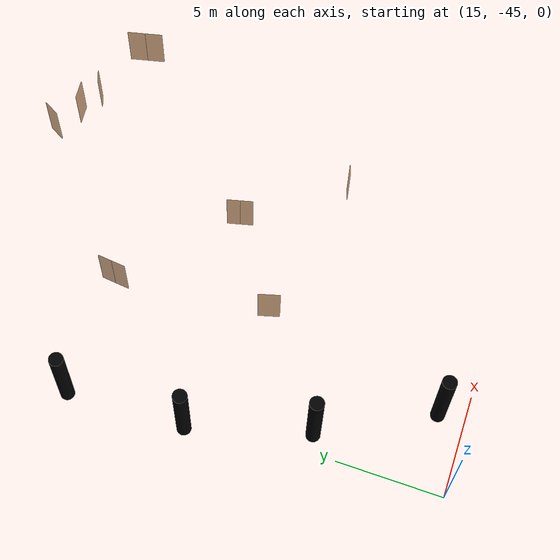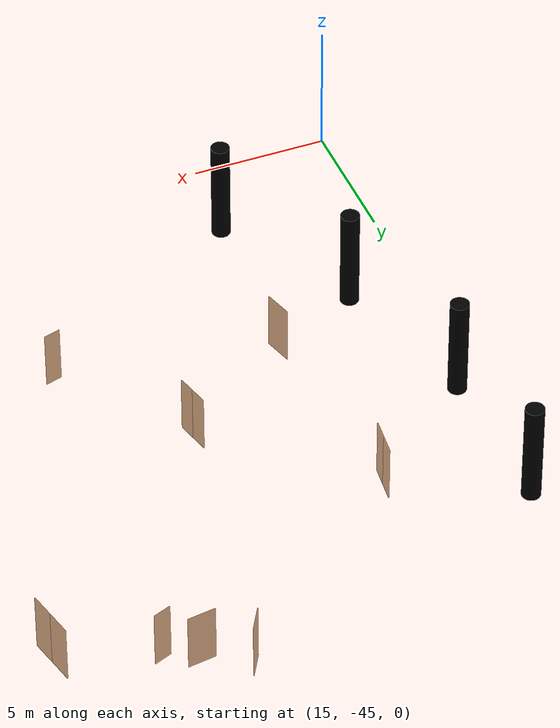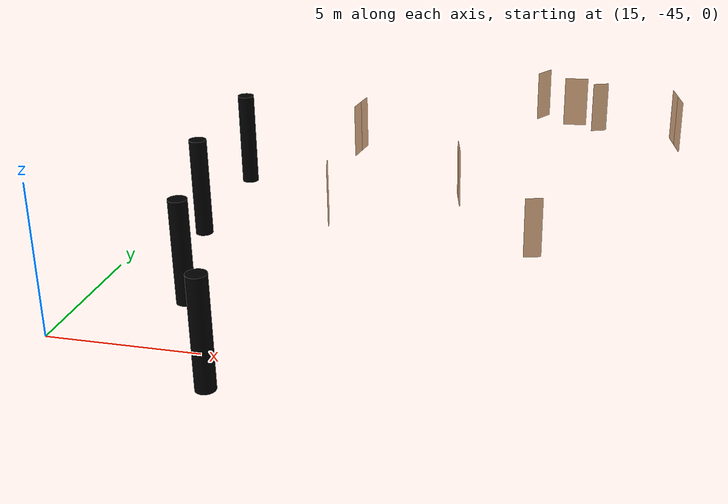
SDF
<sdf version="1.7">
 <world name="world">
  <model name="D35">
   <pose>27.2522 -20.905 0 -0 -0 -2.0991</pose>
   <link name="right">
    <pose>0 0 1.11 0 -0 0</pose>
    <visual name="right_visual">
     <geometry><box><size>0.926974 0.03 2.2</size></box></geometry>
     <material><ambient>0.5 0.25 0 0.6</ambient><diffuse>0.5 0.25 0 0.6</diffuse></material>
    </visual>
    <collision name="right_collision">
     <geometry><box><size>0.926974 0.03 2.2</size></box></geometry>
     <surface><contact><collide_bitmask>2</collide_bitmask></contact></surface>
    </collision>
    <inertial>
     <mass>50</mass>
     <inertia><ixx>20.1704</ixx><iyy>23.747</iyy><izz>3.58409</izz><ixy>0</ixy><ixz>0</ixz><iyz>0</iyz></inertia>
    </inertial>
   </link>
   <joint name="right_joint" type="revolute">
    <parent>world</parent>
    <child>right</child>
    <axis>
     <xyz>0 0 1</xyz>
     <limit><lower>0</lower><upper>1.57</upper></limit>
     <dynamics><spring_reference>0</spring_reference><spring_stiffness>0</spring_stiffness></dynamics>
    </axis>
    <pose>0.468487 0 0 0 -0 0</pose>
   </joint>
   <plugin name="door_D35" filename="libdoor.so">
    <v_max_door>0.5</v_max_door>
    <a_max_door>0.3</a_max_door>
    <a_nom_door>0.15</a_nom_door>
    <dx_min_door>0.01</dx_min_door>
    <f_max_door>500.0</f_max_door>
    <door name="D35" type="SwingDoor" left_joint_name="empty_joint" right_joint_name="right_joint"/>
   </plugin>
  </model>
  <model name="D37">
   <pose>28.8017 -21.7376 0 0 -0 0.134395</pose>
   <link name="right">
    <pose>0 0 1.11 0 -0 0</pose>
    <visual name="right_visual">
     <geometry><box><size>1.02647 0.03 2.2</size></box></geometry>
     <material><ambient>0.5 0.25 0 0.6</ambient><diffuse>0.5 0.25 0 0.6</diffuse></material>
    </visual>
    <collision name="right_collision">
     <geometry><box><size>1.02647 0.03 2.2</size></box></geometry>
     <surface><contact><collide_bitmask>2</collide_bitmask></contact></surface>
    </collision>
    <inertial>
     <mass>50</mass>
     <inertia><ixx>20.1704</ixx><iyy>24.5569</iyy><izz>4.39395</izz><ixy>0</ixy><ixz>0</ixz><iyz>0</iyz></inertia>
    </inertial>
   </link>
   <joint name="right_joint" type="revolute">
    <parent>world</parent>
    <child>right</child>
    <axis>
     <xyz>0 0 -1</xyz>
     <limit><lower>0</lower><upper>1.57</upper></limit>
     <dynamics><spring_reference>0</spring_reference><spring_stiffness>0</spring_stiffness></dynamics>
    </axis>
    <pose>0.518237 0 0 0 -0 0</pose>
   </joint>
   <plugin name="door_D37" filename="libdoor.so">
    <v_max_door>0.5</v_max_door>
    <a_max_door>0.3</a_max_door>
    <a_nom_door>0.15</a_nom_door>
    <dx_min_door>0.01</dx_min_door>
    <f_max_door>500.0</f_max_door>
    <door name="D37" type="SwingDoor" left_joint_name="empty_joint" right_joint_name="right_joint"/>
   </plugin>
  </model>
  <model name="D38">
   <pose>29.9445 -22.3332 0 0 0 -2.76978</pose>
   <link name="right">
    <pose>0 0 1.11 0 -0 0</pose>
    <visual name="right_visual">
     <geometry><box><size>0.684938 0.03 2.2</size></box></geometry>
     <material><ambient>0.5 0.25 0 0.6</ambient><diffuse>0.5 0.25 0 0.6</diffuse></material>
    </visual>
    <collision name="right_collision">
     <geometry><box><size>0.684938 0.03 2.2</size></box></geometry>
     <surface><contact><collide_bitmask>2</collide_bitmask></contact></surface>
    </collision>
    <inertial>
     <mass>50</mass>
     <inertia><ixx>20.1704</ixx><iyy>22.1214</iyy><izz>1.9585</izz><ixy>0</ixy><ixz>0</ixz><iyz>0</iyz></inertia>
    </inertial>
   </link>
   <joint name="right_joint" type="revolute">
    <parent>world</parent>
    <child>right</child>
    <axis>
     <xyz>0 0 1</xyz>
     <limit><lower>0</lower><upper>1.57</upper></limit>
     <dynamics><spring_reference>0</spring_reference><spring_stiffness>0</spring_stiffness></dynamics>
    </axis>
    <pose>0.347469 0 0 0 -0 0</pose>
   </joint>
   <plugin name="door_D38" filename="libdoor.so">
    <v_max_door>0.5</v_max_door>
    <a_max_door>0.3</a_max_door>
    <a_nom_door>0.15</a_nom_door>
    <dx_min_door>0.01</dx_min_door>
    <f_max_door>500.0</f_max_door>
    <door name="D38" type="SwingDoor" left_joint_name="empty_joint" right_joint_name="right_joint"/>
   </plugin>
  </model>
  <model name="D41">
   <pose>20.8549 -34.8204 0 0 0 -1.29248</pose>
   <link name="right">
    <pose>0 0 1.11 0 -0 0</pose>
    <visual name="right_visual">
     <geometry><box><size>1.06495 0.03 2.2</size></box></geometry>
     <material><ambient>0.5 0.25 0 0.6</ambient><diffuse>0.5 0.25 0 0.6</diffuse></material>
    </visual>
    <collision name="right_collision">
     <geometry><box><size>1.06495 0.03 2.2</size></box></geometry>
     <surface><contact><collide_bitmask>2</collide_bitmask></contact></surface>
    </collision>
    <inertial>
     <mass>50</mass>
     <inertia><ixx>20.1704</ixx><iyy>24.8922</iyy><izz>4.72928</izz><ixy>0</ixy><ixz>0</ixz><iyz>0</iyz></inertia>
    </inertial>
   </link>
   <joint name="right_joint" type="revolute">
    <parent>world</parent>
    <child>right</child>
    <axis>
     <xyz>0 0 -1</xyz>
     <limit><lower>0</lower><upper>1.57</upper></limit>
     <dynamics><spring_reference>0</spring_reference><spring_stiffness>0</spring_stiffness></dynamics>
    </axis>
    <pose>0.537477 0 0 0 -0 0</pose>
   </joint>
   <plugin name="door_D41" filename="libdoor.so">
    <v_max_door>0.5</v_max_door>
    <a_max_door>0.3</a_max_door>
    <a_nom_door>0.15</a_nom_door>
    <dx_min_door>0.01</dx_min_door>
    <f_max_door>500.0</f_max_door>
    <door name="D41" type="SwingDoor" left_joint_name="empty_joint" right_joint_name="right_joint"/>
   </plugin>
  </model>
  <model name="D42">
   <pose>28.6688 -36.3474 0 0 -0 -2.85205</pose>
   <link name="right">
    <pose>0 0 1.11 0 -0 0</pose>
    <visual name="right_visual">
     <geometry><box><size>0.625709 0.03 2.2</size></box></geometry>
     <material><ambient>0.5 0.25 0 0.6</ambient><diffuse>0.5 0.25 0 0.6</diffuse></material>
    </visual>
    <collision name="right_collision">
     <geometry><box><size>0.625709 0.03 2.2</size></box></geometry>
     <surface><contact><collide_bitmask>2</collide_bitmask></contact></surface>
    </collision>
    <inertial>
     <mass>50</mass>
     <inertia><ixx>20.1704</ixx><iyy>21.798</iyy><izz>1.63505</izz><ixy>0</ixy><ixz>0</ixz><iyz>0</iyz></inertia>
    </inertial>
   </link>
   <joint name="right_joint" type="revolute">
    <parent>world</parent>
    <child>right</child>
    <axis>
     <xyz>0 0 1</xyz>
     <limit><lower>0</lower><upper>1.57</upper></limit>
     <dynamics><spring_reference>0</spring_reference><spring_stiffness>0</spring_stiffness></dynamics>
    </axis>
    <pose>0.317855 0 0 0 -0 0</pose>
   </joint>
   <plugin name="door_D42" filename="libdoor.so">
    <v_max_door>0.5</v_max_door>
    <a_max_door>0.3</a_max_door>
    <a_nom_door>0.15</a_nom_door>
    <dx_min_door>0.01</dx_min_door>
    <f_max_door>500.0</f_max_door>
    <door name="D42" type="SwingDoor" left_joint_name="empty_joint" right_joint_name="right_joint"/>
   </plugin>
  </model>
  <model name="DH4">
   <pose>33.3402 -23.5658 0 0 -0 1.79804</pose>
   <link name="right">
    <pose>0.460935 0 1.11 0 -0 0</pose>
    <visual name="right_visual">
     <geometry><box><size>0.911871 0.03 2.2</size></box></geometry>
     <material><ambient>0.5 0.25 0 0.6</ambient><diffuse>0.5 0.25 0 0.6</diffuse></material>
    </visual>
    <collision name="right_collision">
     <geometry><box><size>0.911871 0.03 2.2</size></box></geometry>
     <surface><contact><collide_bitmask>2</collide_bitmask></contact></surface>
    </collision>
    <inertial>
     <mass>50</mass>
     <inertia><ixx>20.1704</ixx><iyy>23.6313</iyy><izz>3.46837</izz><ixy>0</ixy><ixz>0</ixz><iyz>0</iyz></inertia>
    </inertial>
   </link>
   <joint name="right_joint" type="revolute">
    <parent>world</parent>
    <child>right</child>
    <axis>
     <xyz>0 0 -1</xyz>
     <limit><lower>0</lower><upper>1.57</upper></limit>
     <dynamics><spring_reference>0</spring_reference><spring_stiffness>0</spring_stiffness></dynamics>
    </axis>
    <pose>0.460935 0 0 0 -0 0</pose>
   </joint>
   <link name="left">
    <pose>-0.460935 0 1.11 0 -0 0</pose>
    <visual name="left_visual">
     <geometry><box><size>0.911871 0.03 2.2</size></box></geometry>
     <material><ambient>0.5 0.25 0 0.6</ambient><diffuse>0.5 0.25 0 0.6</diffuse></material>
    </visual>
    <collision name="left_collision">
     <geometry><box><size>0.911871 0.03 2.2</size></box></geometry>
     <surface><contact><collide_bitmask>2</collide_bitmask></contact></surface>
    </collision>
    <inertial>
     <mass>50</mass>
     <inertia><ixx>20.1704</ixx><iyy>23.6313</iyy><izz>3.46837</izz><ixy>0</ixy><ixz>0</ixz><iyz>0</iyz></inertia>
    </inertial>
   </link>
   <joint name="left_joint" type="revolute">
    <parent>world</parent>
    <child>left</child>
    <axis>
     <xyz>0 0 -1</xyz>
     <limit><lower>-1.57</lower><upper>0</upper></limit>
     <dynamics><spring_reference>0</spring_reference><spring_stiffness>0</spring_stiffness></dynamics>
    </axis>
    <pose>-0.460935 0 0 0 -0 0</pose>
   </joint>
   <plugin name="door_DH4" filename="libdoor.so">
    <v_max_door>0.5</v_max_door>
    <a_max_door>0.3</a_max_door>
    <a_nom_door>0.15</a_nom_door>
    <dx_min_door>0.01</dx_min_door>
    <f_max_door>500.0</f_max_door>
    <door name="DH4" type="DoubleSwingDoor" left_joint_name="left_joint" right_joint_name="right_joint"/>
   </plugin>
  </model>
  <model name="DH7">
   <pose>20.0813 -27.229 0 0 0 -1.68321</pose>
   <link name="right">
    <pose>0.357271 0 1.11 0 -0 0</pose>
    <visual name="right_visual">
     <geometry><box><size>0.704543 0.03 2.2</size></box></geometry>
     <material><ambient>0.5 0.25 0 0.6</ambient><diffuse>0.5 0.25 0 0.6</diffuse></material>
    </visual>
    <collision name="right_collision">
     <geometry><box><size>0.704543 0.03 2.2</size></box></geometry>
     <surface><contact><collide_bitmask>2</collide_bitmask></contact></surface>
    </collision>
    <inertial>
     <mass>50</mass>
     <inertia><ixx>20.1704</ixx><iyy>22.2349</iyy><izz>2.072</izz><ixy>0</ixy><ixz>0</ixz><iyz>0</iyz></inertia>
    </inertial>
   </link>
   <joint name="right_joint" type="revolute">
    <parent>world</parent>
    <child>right</child>
    <axis>
     <xyz>0 0 -1</xyz>
     <limit><lower>0</lower><upper>1.57</upper></limit>
     <dynamics><spring_reference>0</spring_reference><spring_stiffness>0</spring_stiffness></dynamics>
    </axis>
    <pose>0.357271 0 0 0 -0 0</pose>
   </joint>
   <link name="left">
    <pose>-0.357271 0 1.11 0 -0 0</pose>
    <visual name="left_visual">
     <geometry><box><size>0.704543 0.03 2.2</size></box></geometry>
     <material><ambient>0.5 0.25 0 0.6</ambient><diffuse>0.5 0.25 0 0.6</diffuse></material>
    </visual>
    <collision name="left_collision">
     <geometry><box><size>0.704543 0.03 2.2</size></box></geometry>
     <surface><contact><collide_bitmask>2</collide_bitmask></contact></surface>
    </collision>
    <inertial>
     <mass>50</mass>
     <inertia><ixx>20.1704</ixx><iyy>22.2349</iyy><izz>2.072</izz><ixy>0</ixy><ixz>0</ixz><iyz>0</iyz></inertia>
    </inertial>
   </link>
   <joint name="left_joint" type="revolute">
    <parent>world</parent>
    <child>left</child>
    <axis>
     <xyz>0 0 -1</xyz>
     <limit><lower>-1.57</lower><upper>0</upper></limit>
     <dynamics><spring_reference>0</spring_reference><spring_stiffness>0</spring_stiffness></dynamics>
    </axis>
    <pose>-0.357271 0 0 0 -0 0</pose>
   </joint>
   <plugin name="door_DH7" filename="libdoor.so">
    <v_max_door>0.5</v_max_door>
    <a_max_door>0.3</a_max_door>
    <a_nom_door>0.15</a_nom_door>
    <dx_min_door>0.01</dx_min_door>
    <f_max_door>500.0</f_max_door>
    <door name="DH7" type="DoubleSwingDoor" left_joint_name="left_joint" right_joint_name="right_joint"/>
   </plugin>
  </model>
  <model name="DH8">
   <pose>25.2203 -31.8157 0 0 -0 1.81582</pose>
   <link name="right">
    <pose>0.327032 0 1.11 0 -0 0</pose>
    <visual name="right_visual">
     <geometry><box><size>0.644064 0.03 2.2</size></box></geometry>
     <material><ambient>0.5 0.25 0 0.6</ambient><diffuse>0.5 0.25 0 0.6</diffuse></material>
    </visual>
    <collision name="right_collision">
     <geometry><box><size>0.644064 0.03 2.2</size></box></geometry>
     <surface><contact><collide_bitmask>2</collide_bitmask></contact></surface>
    </collision>
    <inertial>
     <mass>50</mass>
     <inertia><ixx>20.1704</ixx><iyy>21.8951</iyy><izz>1.73216</izz><ixy>0</ixy><ixz>0</ixz><iyz>0</iyz></inertia>
    </inertial>
   </link>
   <joint name="right_joint" type="revolute">
    <parent>world</parent>
    <child>right</child>
    <axis>
     <xyz>0 0 -1</xyz>
     <limit><lower>0</lower><upper>1.57</upper></limit>
     <dynamics><spring_reference>0</spring_reference><spring_stiffness>0</spring_stiffness></dynamics>
    </axis>
    <pose>0.327032 0 0 0 -0 0</pose>
   </joint>
   <link name="left">
    <pose>-0.327032 0 1.11 0 -0 0</pose>
    <visual name="left_visual">
     <geometry><box><size>0.644064 0.03 2.2</size></box></geometry>
     <material><ambient>0.5 0.25 0 0.6</ambient><diffuse>0.5 0.25 0 0.6</diffuse></material>
    </visual>
    <collision name="left_collision">
     <geometry><box><size>0.644064 0.03 2.2</size></box></geometry>
     <surface><contact><collide_bitmask>2</collide_bitmask></contact></surface>
    </collision>
    <inertial>
     <mass>50</mass>
     <inertia><ixx>20.1704</ixx><iyy>21.8951</iyy><izz>1.73216</izz><ixy>0</ixy><ixz>0</ixz><iyz>0</iyz></inertia>
    </inertial>
   </link>
   <joint name="left_joint" type="revolute">
    <parent>world</parent>
    <child>left</child>
    <axis>
     <xyz>0 0 -1</xyz>
     <limit><lower>-1.57</lower><upper>0</upper></limit>
     <dynamics><spring_reference>0</spring_reference><spring_stiffness>0</spring_stiffness></dynamics>
    </axis>
    <pose>-0.327032 0 0 0 -0 0</pose>
   </joint>
   <plugin name="door_DH8" filename="libdoor.so">
    <v_max_door>0.5</v_max_door>
    <a_max_door>0.3</a_max_door>
    <a_nom_door>0.15</a_nom_door>
    <dx_min_door>0.01</dx_min_door>
    <f_max_door>500.0</f_max_door>
    <door name="DH8" type="DoubleSwingDoor" left_joint_name="left_joint" right_joint_name="right_joint"/>
   </plugin>
  </model>
  <model name="CylinderBlock_29">
   <link name="link">
    <inertial>
     <mass>1</mass>
     <inertia><ixx>1</ixx><ixy>0</ixy><ixz>0</ixz><iyy>1</iyy><iyz>0</iyz><izz>1</izz></inertia>
    </inertial>
    <visual name="visual">
     <geometry><cylinder><radius>0.35</radius><length>4.0</length></cylinder></geometry>
     <material>
      <shader type="pixel"><normal_map>__default__</normal_map></shader>
      <script><name>ModelPreview_1::link::visual_MATERIAL_</name><uri>__default__</uri></script>
      <ambient>0 0 0 1</ambient>
      <diffuse>0 0 0 1</diffuse>
      <specular>0 0 0 1</specular>
      <emissive>0 0 0 1</emissive>
     </material>
    </visual>
    <collision name="collision">
     <geometry><cylinder><radius>0.35</radius><length>4.0</length></cylinder></geometry>
     <surface>
      <friction>
       <ode><mu>1</mu><mu2>1</mu2><fdir1>0 0 0</fdir1><slip1>0</slip1><slip2>0</slip2></ode>
       <torsional>
        <coefficient>1</coefficient>
        <patch_radius>0</patch_radius>
        <surface_radius>0</surface_radius>
        <use_patch_radius>1</use_patch_radius>
        <ode><slip>0</slip></ode>
       </torsional>
      </friction>
      <bounce><restitution_coefficient>0</restitution_coefficient><threshold>1e+06</threshold></bounce>
      <contact>
       <collide_without_contact>0</collide_without_contact>
       <collide_without_contact_bitmask>1</collide_without_contact_bitmask>
       <collide_bitmask>1</collide_bitmask>
       <ode>
        <soft_cfm>0</soft_cfm>
        <soft_erp>0.2</soft_erp>
        <kp>1e+13</kp>
        <kd>1</kd>
        <max_vel>0.01</max_vel>
        <min_depth>0</min_depth>
       </ode>
       <bullet>
        <split_impulse>1</split_impulse>
        <split_impulse_penetration_threshold>-0.01</split_impulse_penetration_threshold>
        <soft_cfm>0</soft_cfm>
        <soft_erp>0.2</soft_erp>
        <kp>1e+13</kp>
        <kd>1</kd>
       </bullet>
      </contact>
     </surface>
    </collision>
   </link>
   <static>1</static>
   <pose>14.6822 -26.7742 0 0 -0 0</pose>
  </model>
  <model name="CylinderBlock_30">
   <link name="link">
    <inertial>
     <mass>1</mass>
     <inertia><ixx>1</ixx><ixy>0</ixy><ixz>0</ixz><iyy>1</iyy><iyz>0</iyz><izz>1</izz></inertia>
    </inertial>
    <visual name="visual">
     <geometry><cylinder><radius>0.35</radius><length>4.0</length></cylinder></geometry>
     <material>
      <shader type="pixel"><normal_map>__default__</normal_map></shader>
      <script><name>ModelPreview_1::link::visual_MATERIAL_</name><uri>__default__</uri></script>
      <ambient>0 0 0 1</ambient>
      <diffuse>0 0 0 1</diffuse>
      <specular>0 0 0 1</specular>
      <emissive>0 0 0 1</emissive>
     </material>
    </visual>
    <collision name="collision">
     <geometry><cylinder><radius>0.35</radius><length>4.0</length></cylinder></geometry>
     <surface>
      <friction>
       <ode><mu>1</mu><mu2>1</mu2><fdir1>0 0 0</fdir1><slip1>0</slip1><slip2>0</slip2></ode>
       <torsional>
        <coefficient>1</coefficient>
        <patch_radius>0</patch_radius>
        <surface_radius>0</surface_radius>
        <use_patch_radius>1</use_patch_radius>
        <ode><slip>0</slip></ode>
       </torsional>
      </friction>
      <bounce><restitution_coefficient>0</restitution_coefficient><threshold>1e+06</threshold></bounce>
      <contact>
       <collide_without_contact>0</collide_without_contact>
       <collide_without_contact_bitmask>1</collide_without_contact_bitmask>
       <collide_bitmask>1</collide_bitmask>
       <ode>
        <soft_cfm>0</soft_cfm>
        <soft_erp>0.2</soft_erp>
        <kp>1e+13</kp>
        <kd>1</kd>
        <max_vel>0.01</max_vel>
        <min_depth>0</min_depth>
       </ode>
       <bullet>
        <split_impulse>1</split_impulse>
        <split_impulse_penetration_threshold>-0.01</split_impulse_penetration_threshold>
        <soft_cfm>0</soft_cfm>
        <soft_erp>0.2</soft_erp>
        <kp>1e+13</kp>
        <kd>1</kd>
       </bullet>
      </contact>
     </surface>
    </collision>
   </link>
   <static>1</static>
   <pose>14.8797 -32.6775 0 0 -0 0</pose>
  </model>
  <model name="CylinderBlock_31">
   <link name="link">
    <inertial>
     <mass>1</mass>
     <inertia><ixx>1</ixx><ixy>0</ixy><ixz>0</ixz><iyy>1</iyy><iyz>0</iyz><izz>1</izz></inertia>
    </inertial>
    <visual name="visual">
     <geometry><cylinder><radius>0.35</radius><length>4.0</length></cylinder></geometry>
     <material>
      <shader type="pixel"><normal_map>__default__</normal_map></shader>
      <script><name>ModelPreview_1::link::visual_MATERIAL_</name><uri>__default__</uri></script>
      <ambient>0 0 0 1</ambient>
      <diffuse>0 0 0 1</diffuse>
      <specular>0 0 0 1</specular>
      <emissive>0 0 0 1</emissive>
     </material>
    </visual>
    <collision name="collision">
     <geometry><cylinder><radius>0.35</radius><length>4.0</length></cylinder></geometry>
     <surface>
      <friction>
       <ode><mu>1</mu><mu2>1</mu2><fdir1>0 0 0</fdir1><slip1>0</slip1><slip2>0</slip2></ode>
       <torsional>
        <coefficient>1</coefficient>
        <patch_radius>0</patch_radius>
        <surface_radius>0</surface_radius>
        <use_patch_radius>1</use_patch_radius>
        <ode><slip>0</slip></ode>
       </torsional>
      </friction>
      <bounce><restitution_coefficient>0</restitution_coefficient><threshold>1e+06</threshold></bounce>
      <contact>
       <collide_without_contact>0</collide_without_contact>
       <collide_without_contact_bitmask>1</collide_without_contact_bitmask>
       <collide_bitmask>1</collide_bitmask>
       <ode>
        <soft_cfm>0</soft_cfm>
        <soft_erp>0.2</soft_erp>
        <kp>1e+13</kp>
        <kd>1</kd>
        <max_vel>0.01</max_vel>
        <min_depth>0</min_depth>
       </ode>
       <bullet>
        <split_impulse>1</split_impulse>
        <split_impulse_penetration_threshold>-0.01</split_impulse_penetration_threshold>
        <soft_cfm>0</soft_cfm>
        <soft_erp>0.2</soft_erp>
        <kp>1e+13</kp>
        <kd>1</kd>
       </bullet>
      </contact>
     </surface>
    </collision>
   </link>
   <static>1</static>
   <pose>16.5822 -38.5214 0 0 -0 0</pose>
  </model>
  <model name="CylinderBlock_32">
   <link name="link">
    <inertial>
     <mass>1</mass>
     <inertia><ixx>1</ixx><ixy>0</ixy><ixz>0</ixz><iyy>1</iyy><iyz>0</iyz><izz>1</izz></inertia>
    </inertial>
    <visual name="visual">
     <geometry><cylinder><radius>0.35</radius><length>4.0</length></cylinder></geometry>
     <material>
      <shader type="pixel"><normal_map>__default__</normal_map></shader>
      <script><name>ModelPreview_1::link::visual_MATERIAL_</name><uri>__default__</uri></script>
      <ambient>0 0 0 1</ambient>
      <diffuse>0 0 0 1</diffuse>
      <specular>0 0 0 1</specular>
      <emissive>0 0 0 1</emissive>
     </material>
    </visual>
    <collision name="collision">
     <geometry><cylinder><radius>0.35</radius><length>4.0</length></cylinder></geometry>
     <surface>
      <friction>
       <ode><mu>1</mu><mu2>1</mu2><fdir1>0 0 0</fdir1><slip1>0</slip1><slip2>0</slip2></ode>
       <torsional>
        <coefficient>1</coefficient>
        <patch_radius>0</patch_radius>
        <surface_radius>0</surface_radius>
        <use_patch_radius>1</use_patch_radius>
        <ode><slip>0</slip></ode>
       </torsional>
      </friction>
      <bounce><restitution_coefficient>0</restitution_coefficient><threshold>1e+06</threshold></bounce>
      <contact>
       <collide_without_contact>0</collide_without_contact>
       <collide_without_contact_bitmask>1</collide_without_contact_bitmask>
       <collide_bitmask>1</collide_bitmask>
       <ode>
        <soft_cfm>0</soft_cfm>
        <soft_erp>0.2</soft_erp>
        <kp>1e+13</kp>
        <kd>1</kd>
        <max_vel>0.01</max_vel>
        <min_depth>0</min_depth>
       </ode>
       <bullet>
        <split_impulse>1</split_impulse>
        <split_impulse_penetration_threshold>-0.01</split_impulse_penetration_threshold>
        <soft_cfm>0</soft_cfm>
        <soft_erp>0.2</soft_erp>
        <kp>1e+13</kp>
        <kd>1</kd>
       </bullet>
      </contact>
     </surface>
    </collision>
   </link>
   <static>1</static>
   <pose>19.5005 -43.8007 0 0 -0 0</pose>
  </model>
 </world>
</sdf>
